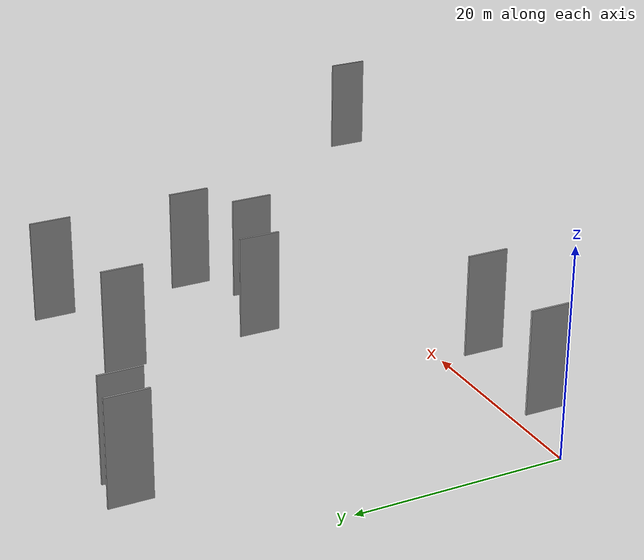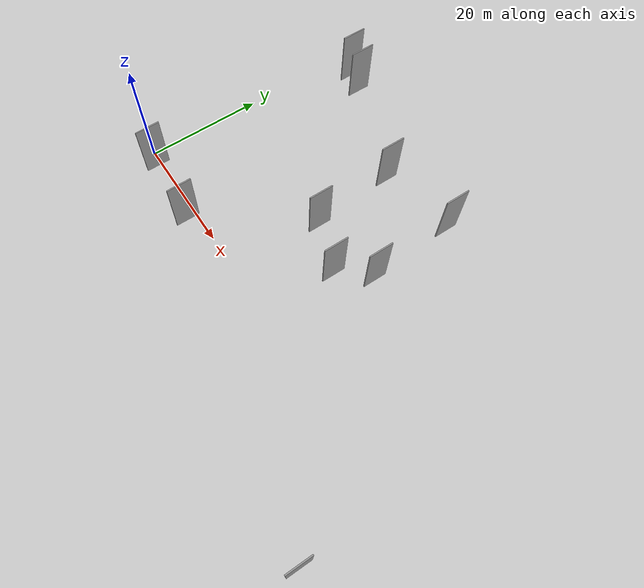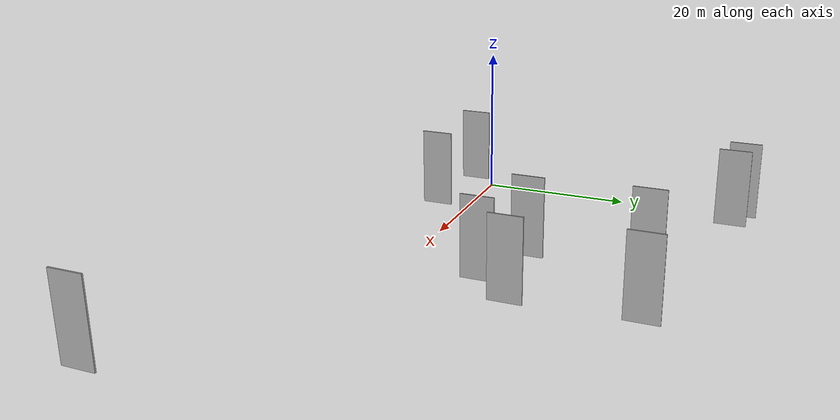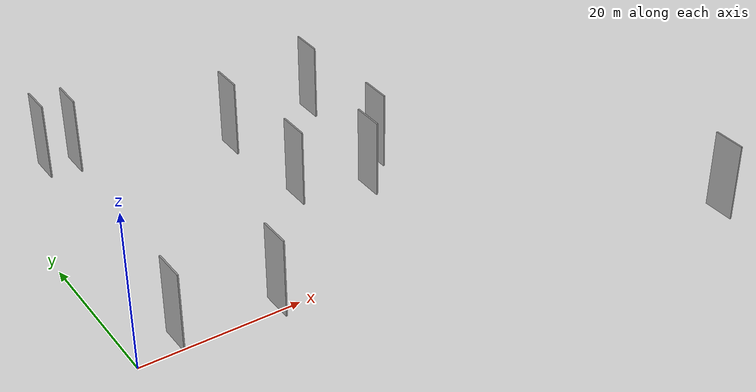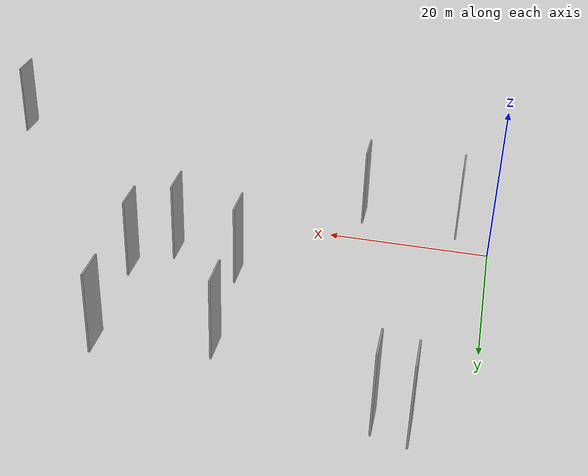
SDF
<sdf version="1.6">
 <world name="default">
  <scene>
   <sky><clouds><speed>12</speed></clouds></sky>
   <ambient>0.4 0.4 0.4 1</ambient>
   <background>0.7 0.7 0.7 1</background>
   <shadows>1</shadows>
  </scene>
  <gravity>0 0 -9.8066</gravity>
  <magnetic_field>6e-06 2.3e-05 -4.2e-05</magnetic_field>
  <physics default="0" name="default_physics" type="ode">
   <ode>
    <solver>
     <type>quick</type>
     <iters>10</iters>
     <sor>1.0</sor>
     <use_dynamic_moi_rescaling>0</use_dynamic_moi_rescaling>
    </solver>
    <constraints>
     <cfm>0</cfm>
     <erp>0.2</erp>
     <contact_max_correcting_vel>100</contact_max_correcting_vel>
     <contact_surface_layer>0.001</contact_surface_layer>
    </constraints>
   </ode>
   <max_step_size>0.004</max_step_size>
   <real_time_factor>1</real_time_factor>
   <real_time_update_rate>250</real_time_update_rate>
  </physics>
  <light name="sun" type="directional">
   <pose>0 0 10 0 0 0</pose>
   <diffuse>0.8 0.8 0.8 1</diffuse>
   <specular>0.2 0.2 0.2 1</specular>
   <attenuation>
    <range>1000</range>
    <constant>0.9</constant>
    <linear>0.01</linear>
    <quadratic>0.001</quadratic>
   </attenuation>
   <direction>-0.5 0.1 -0.9</direction>
  </light>
  <model name="grey_wall_1">
   <static>1</static>
   <pose>27.5151 28.9056 2.5 0.000000 0.000000 1.570796</pose>
   <link name="link">
    <pose>0 0 5.00 0 0 0</pose>
    <collision name="collision"><geometry><box><size>4.00 0.2 10.00</size></box></geometry></collision>
    <visual name="visual">
     <cast_shadows>0</cast_shadows>
     <geometry><box><size>4.00 0.2 10.00</size></box></geometry>
     <material>
      <script>
       <uri>model://grey_wall/materials/scripts</uri>
       <uri>model://grey_wall/materials/textures</uri>
       <name>vrc/grey_wall</name>
      </script>
     </material>
    </visual>
   </link>
  </model>
  <model name="grey_wall_2">
   <static>1</static>
   <pose>5.9901 36.9625 2.5 0.000000 0.000000 1.570796</pose>
   <link name="link">
    <pose>0 0 5.00 0 0 0</pose>
    <collision name="collision"><geometry><box><size>4.00 0.2 10.00</size></box></geometry></collision>
    <visual name="visual">
     <cast_shadows>0</cast_shadows>
     <geometry><box><size>4.00 0.2 10.00</size></box></geometry>
     <material>
      <script>
       <uri>model://grey_wall/materials/scripts</uri>
       <uri>model://grey_wall/materials/textures</uri>
       <name>vrc/grey_wall</name>
      </script>
     </material>
    </visual>
   </link>
  </model>
  <model name="grey_wall_3">
   <static>1</static>
   <pose>4.1768 -0.9708 2.5 0.000000 0.000000 1.570796</pose>
   <link name="link">
    <pose>0 0 5.00 0 0 0</pose>
    <collision name="collision"><geometry><box><size>4.00 0.2 10.00</size></box></geometry></collision>
    <visual name="visual">
     <cast_shadows>0</cast_shadows>
     <geometry><box><size>4.00 0.2 10.00</size></box></geometry>
     <material>
      <script>
       <uri>model://grey_wall/materials/scripts</uri>
       <uri>model://grey_wall/materials/textures</uri>
       <name>vrc/grey_wall</name>
      </script>
     </material>
    </visual>
   </link>
  </model>
  <model name="grey_wall_4">
   <static>1</static>
   <pose>28.5923 14.9247 2.5 0.000000 0.000000 1.570796</pose>
   <link name="link">
    <pose>0 0 5.00 0 0 0</pose>
    <collision name="collision"><geometry><box><size>4.00 0.2 10.00</size></box></geometry></collision>
    <visual name="visual">
     <cast_shadows>0</cast_shadows>
     <geometry><box><size>4.00 0.2 10.00</size></box></geometry>
     <material>
      <script>
       <uri>model://grey_wall/materials/scripts</uri>
       <uri>model://grey_wall/materials/textures</uri>
       <name>vrc/grey_wall</name>
      </script>
     </material>
    </visual>
   </link>
  </model>
  <model name="grey_wall_5">
   <static>1</static>
   <pose>40.3426 31.0767 2.5 0.000000 0.000000 1.570796</pose>
   <link name="link">
    <pose>0 0 5.00 0 0 0</pose>
    <collision name="collision"><geometry><box><size>4.00 0.2 10.00</size></box></geometry></collision>
    <visual name="visual">
     <cast_shadows>0</cast_shadows>
     <geometry><box><size>4.00 0.2 10.00</size></box></geometry>
     <material>
      <script>
       <uri>model://grey_wall/materials/scripts</uri>
       <uri>model://grey_wall/materials/textures</uri>
       <name>vrc/grey_wall</name>
      </script>
     </material>
    </visual>
   </link>
  </model>
  <model name="grey_wall_6">
   <static>1</static>
   <pose>41.1516 16.5710 2.5 0.000000 0.000000 1.570796</pose>
   <link name="link">
    <pose>0 0 5.00 0 0 0</pose>
    <collision name="collision"><geometry><box><size>4.00 0.2 10.00</size></box></geometry></collision>
    <visual name="visual">
     <cast_shadows>0</cast_shadows>
     <geometry><box><size>4.00 0.2 10.00</size></box></geometry>
     <material>
      <script>
       <uri>model://grey_wall/materials/scripts</uri>
       <uri>model://grey_wall/materials/textures</uri>
       <name>vrc/grey_wall</name>
      </script>
     </material>
    </visual>
   </link>
  </model>
  <model name="grey_wall_7">
   <static>1</static>
   <pose>36.9348 11.8112 2.5 0.000000 0.000000 1.570796</pose>
   <link name="link">
    <pose>0 0 5.00 0 0 0</pose>
    <collision name="collision"><geometry><box><size>4.00 0.2 10.00</size></box></geometry></collision>
    <visual name="visual">
     <cast_shadows>0</cast_shadows>
     <geometry><box><size>4.00 0.2 10.00</size></box></geometry>
     <material>
      <script>
       <uri>model://grey_wall/materials/scripts</uri>
       <uri>model://grey_wall/materials/textures</uri>
       <name>vrc/grey_wall</name>
      </script>
     </material>
    </visual>
   </link>
  </model>
  <model name="grey_wall_8">
   <static>1</static>
   <pose>16.0226 -1.9738 2.5 0.000000 0.000000 1.570796</pose>
   <link name="link">
    <pose>0 0 5.00 0 0 0</pose>
    <collision name="collision"><geometry><box><size>4.00 0.2 10.00</size></box></geometry></collision>
    <visual name="visual">
     <cast_shadows>0</cast_shadows>
     <geometry><box><size>4.00 0.2 10.00</size></box></geometry>
     <material>
      <script>
       <uri>model://grey_wall/materials/scripts</uri>
       <uri>model://grey_wall/materials/textures</uri>
       <name>vrc/grey_wall</name>
      </script>
     </material>
    </visual>
   </link>
  </model>
  <model name="grey_wall_9">
   <static>1</static>
   <pose>9.6431 36.0850 2.5 0.000000 0.000000 1.570796</pose>
   <link name="link">
    <pose>0 0 5.00 0 0 0</pose>
    <collision name="collision"><geometry><box><size>4.00 0.2 10.00</size></box></geometry></collision>
    <visual name="visual">
     <cast_shadows>0</cast_shadows>
     <geometry><box><size>4.00 0.2 10.00</size></box></geometry>
     <material>
      <script>
       <uri>model://grey_wall/materials/scripts</uri>
       <uri>model://grey_wall/materials/textures</uri>
       <name>vrc/grey_wall</name>
      </script>
     </material>
    </visual>
   </link>
  </model>
  <model name="grey_wall_10">
   <static>1</static>
   <pose>68.5994 -15.4263 2.5 0.000000 0.000000 1.570796</pose>
   <link name="link">
    <pose>0 0 5.00 0 0 0</pose>
    <collision name="collision"><geometry><box><size>4.00 0.2 10.00</size></box></geometry></collision>
    <visual name="visual">
     <cast_shadows>0</cast_shadows>
     <geometry><box><size>4.00 0.2 10.00</size></box></geometry>
     <material>
      <script>
       <uri>model://grey_wall/materials/scripts</uri>
       <uri>model://grey_wall/materials/textures</uri>
       <name>vrc/grey_wall</name>
      </script>
     </material>
    </visual>
   </link>
  </model>
 </world>
</sdf>
